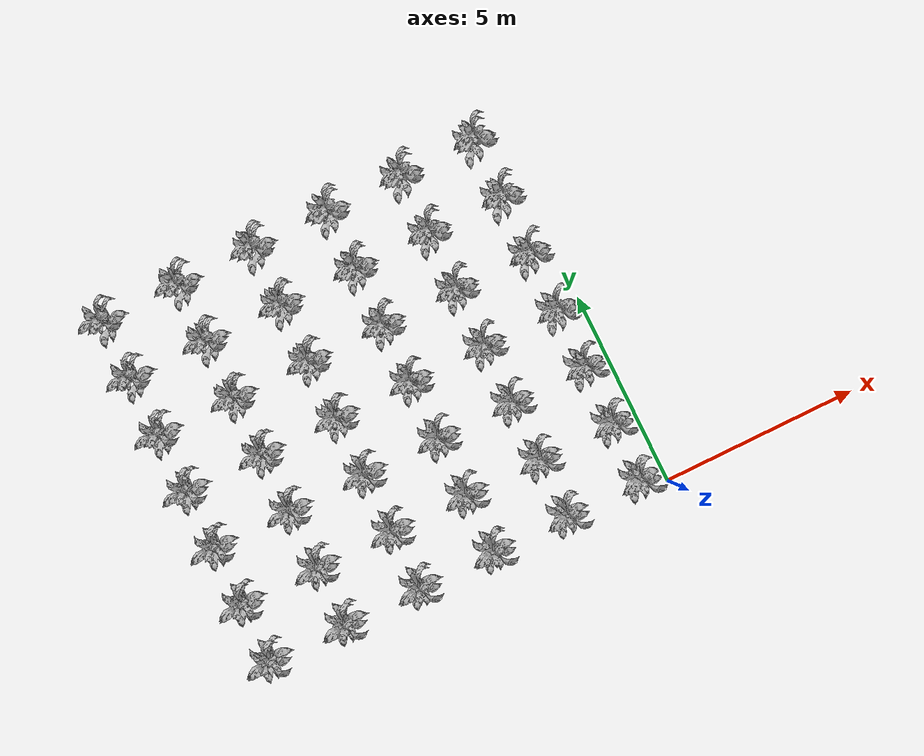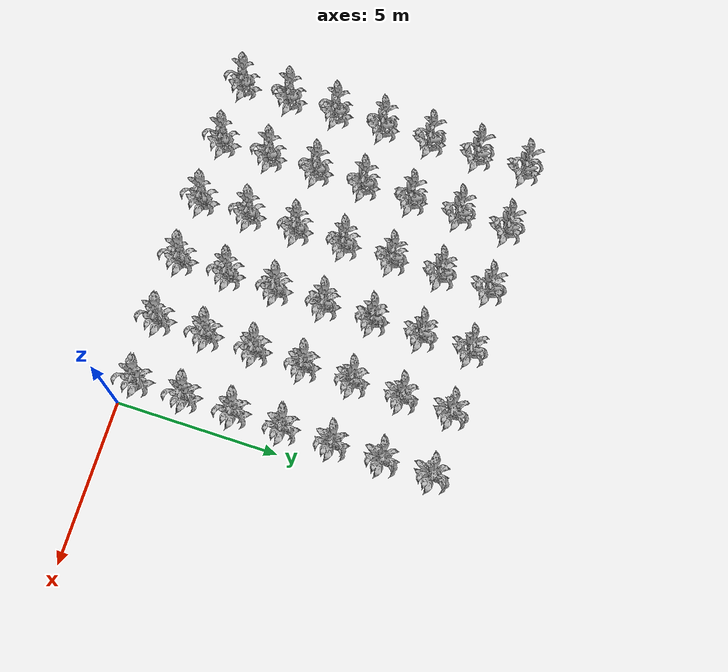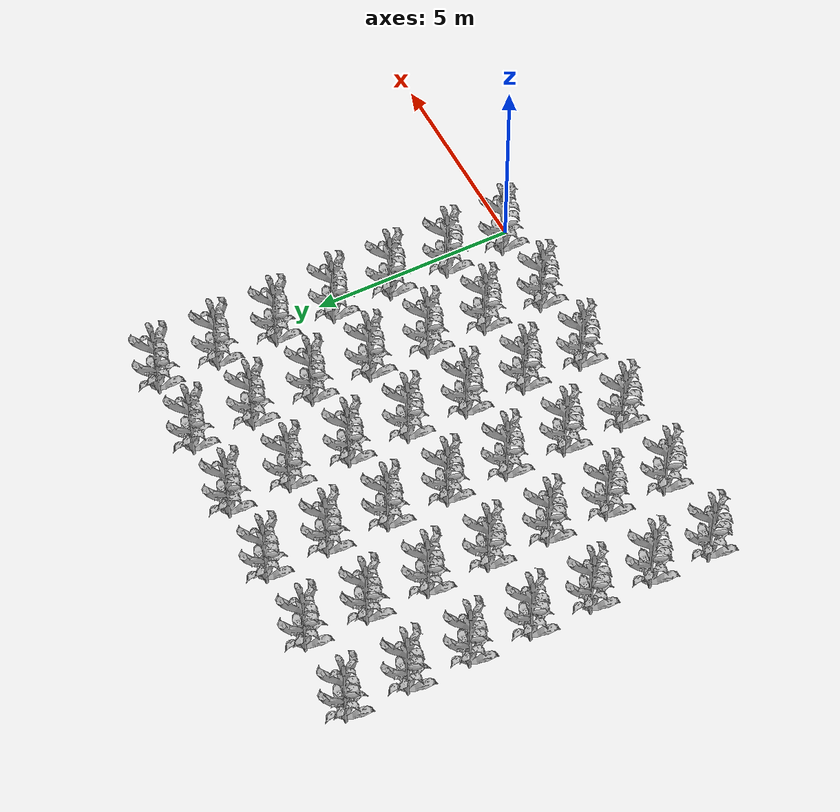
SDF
<sdf version="1.7">
 <world name="default">
  <model name="corn_-10.5_0.5">
   <static>1</static>
   <link name="link">
    <inertial>
     <mass>0.2</mass>
     <inertia>
      <ixx>0.166667</ixx>
      <ixy>0</ixy>
      <ixz>0</ixz>
      <iyy>0.166667</iyy>
      <iyz>0</iyz>
      <izz>0.166667</izz>
     </inertia>
    </inertial>
    <collision name="collision">
     <geometry><mesh><uri>model://corn_2/meshes/corn.dae</uri><scale>1 1 1</scale></mesh></geometry>
     <surface>
      <friction><ode><mu>0.0</mu><mu2>0.0</mu2></ode></friction>
      <contact><ode><kp>0.0</kp><kd>0.0</kd><max_vel>0.0</max_vel><min_depth>0.002</min_depth></ode></contact>
     </surface>
    </collision>
    <visual name="visual">
     <geometry><mesh><uri>model://corn_2/meshes/corn.dae</uri><scale>1 1 1</scale></mesh></geometry>
    </visual>
    <velocity_decay><linear>0</linear><angular>0</angular></velocity_decay>
   </link>
   <pose>-10.5 0.5 0.15 0 -0 0</pose>
  </model>
  <model name="corn_-10.5_2.0">
   <static>1</static>
   <link name="link">
    <inertial>
     <mass>0.2</mass>
     <inertia>
      <ixx>0.166667</ixx>
      <ixy>0</ixy>
      <ixz>0</ixz>
      <iyy>0.166667</iyy>
      <iyz>0</iyz>
      <izz>0.166667</izz>
     </inertia>
    </inertial>
    <collision name="collision">
     <geometry><mesh><uri>model://corn_2/meshes/corn.dae</uri><scale>1 1 1</scale></mesh></geometry>
     <surface>
      <friction><ode><mu>0.0</mu><mu2>0.0</mu2></ode></friction>
      <contact><ode><kp>0.0</kp><kd>0.0</kd><max_vel>0.0</max_vel><min_depth>0.002</min_depth></ode></contact>
     </surface>
    </collision>
    <visual name="visual">
     <geometry><mesh><uri>model://corn_2/meshes/corn.dae</uri><scale>1 1 1</scale></mesh></geometry>
    </visual>
    <velocity_decay><linear>0</linear><angular>0</angular></velocity_decay>
   </link>
   <pose>-10.5 2 0.15 0 -0 0</pose>
  </model>
  <model name="corn_-10.5_3.5">
   <static>1</static>
   <link name="link">
    <inertial>
     <mass>0.2</mass>
     <inertia>
      <ixx>0.166667</ixx>
      <ixy>0</ixy>
      <ixz>0</ixz>
      <iyy>0.166667</iyy>
      <iyz>0</iyz>
      <izz>0.166667</izz>
     </inertia>
    </inertial>
    <collision name="collision">
     <geometry><mesh><uri>model://corn_2/meshes/corn.dae</uri><scale>1 1 1</scale></mesh></geometry>
     <surface>
      <friction><ode><mu>0.0</mu><mu2>0.0</mu2></ode></friction>
      <contact><ode><kp>0.0</kp><kd>0.0</kd><max_vel>0.0</max_vel><min_depth>0.002</min_depth></ode></contact>
     </surface>
    </collision>
    <visual name="visual">
     <geometry><mesh><uri>model://corn_2/meshes/corn.dae</uri><scale>1 1 1</scale></mesh></geometry>
    </visual>
    <velocity_decay><linear>0</linear><angular>0</angular></velocity_decay>
   </link>
   <pose>-10.5 3.5 0.15 0 -0 0</pose>
  </model>
  <model name="corn_-10.5_5.0">
   <static>1</static>
   <link name="link">
    <inertial>
     <mass>0.2</mass>
     <inertia>
      <ixx>0.166667</ixx>
      <ixy>0</ixy>
      <ixz>0</ixz>
      <iyy>0.166667</iyy>
      <iyz>0</iyz>
      <izz>0.166667</izz>
     </inertia>
    </inertial>
    <collision name="collision">
     <geometry><mesh><uri>model://corn_2/meshes/corn.dae</uri><scale>1 1 1</scale></mesh></geometry>
     <surface>
      <friction><ode><mu>0.0</mu><mu2>0.0</mu2></ode></friction>
      <contact><ode><kp>0.0</kp><kd>0.0</kd><max_vel>0.0</max_vel><min_depth>0.002</min_depth></ode></contact>
     </surface>
    </collision>
    <visual name="visual">
     <geometry><mesh><uri>model://corn_2/meshes/corn.dae</uri><scale>1 1 1</scale></mesh></geometry>
    </visual>
    <velocity_decay><linear>0</linear><angular>0</angular></velocity_decay>
   </link>
   <pose>-10.5 5 0.15 0 -0 0</pose>
  </model>
  <model name="corn_-10.5_6.5">
   <static>1</static>
   <link name="link">
    <inertial>
     <mass>0.2</mass>
     <inertia>
      <ixx>0.166667</ixx>
      <ixy>0</ixy>
      <ixz>0</ixz>
      <iyy>0.166667</iyy>
      <iyz>0</iyz>
      <izz>0.166667</izz>
     </inertia>
    </inertial>
    <collision name="collision">
     <geometry><mesh><uri>model://corn_2/meshes/corn.dae</uri><scale>1 1 1</scale></mesh></geometry>
     <surface>
      <friction><ode><mu>0.0</mu><mu2>0.0</mu2></ode></friction>
      <contact><ode><kp>0.0</kp><kd>0.0</kd><max_vel>0.0</max_vel><min_depth>0.002</min_depth></ode></contact>
     </surface>
    </collision>
    <visual name="visual">
     <geometry><mesh><uri>model://corn_2/meshes/corn.dae</uri><scale>1 1 1</scale></mesh></geometry>
    </visual>
    <velocity_decay><linear>0</linear><angular>0</angular></velocity_decay>
   </link>
   <pose>-10.5 6.5 0.15 0 -0 0</pose>
  </model>
  <model name="corn_-10.5_8.0">
   <static>1</static>
   <link name="link">
    <inertial>
     <mass>0.2</mass>
     <inertia>
      <ixx>0.166667</ixx>
      <ixy>0</ixy>
      <ixz>0</ixz>
      <iyy>0.166667</iyy>
      <iyz>0</iyz>
      <izz>0.166667</izz>
     </inertia>
    </inertial>
    <collision name="collision">
     <geometry><mesh><uri>model://corn_2/meshes/corn.dae</uri><scale>1 1 1</scale></mesh></geometry>
     <surface>
      <friction><ode><mu>0.0</mu><mu2>0.0</mu2></ode></friction>
      <contact><ode><kp>0.0</kp><kd>0.0</kd><max_vel>0.0</max_vel><min_depth>0.002</min_depth></ode></contact>
     </surface>
    </collision>
    <visual name="visual">
     <geometry><mesh><uri>model://corn_2/meshes/corn.dae</uri><scale>1 1 1</scale></mesh></geometry>
    </visual>
    <velocity_decay><linear>0</linear><angular>0</angular></velocity_decay>
   </link>
   <pose>-10.5 8 0.15 0 -0 0</pose>
  </model>
  <model name="corn_-10.5_9.5">
   <static>1</static>
   <link name="link">
    <inertial>
     <mass>0.2</mass>
     <inertia>
      <ixx>0.166667</ixx>
      <ixy>0</ixy>
      <ixz>0</ixz>
      <iyy>0.166667</iyy>
      <iyz>0</iyz>
      <izz>0.166667</izz>
     </inertia>
    </inertial>
    <collision name="collision">
     <geometry><mesh><uri>model://corn_2/meshes/corn.dae</uri><scale>1 1 1</scale></mesh></geometry>
     <surface>
      <friction><ode><mu>0.0</mu><mu2>0.0</mu2></ode></friction>
      <contact><ode><kp>0.0</kp><kd>0.0</kd><max_vel>0.0</max_vel><min_depth>0.002</min_depth></ode></contact>
     </surface>
    </collision>
    <visual name="visual">
     <geometry><mesh><uri>model://corn_2/meshes/corn.dae</uri><scale>1 1 1</scale></mesh></geometry>
    </visual>
    <velocity_decay><linear>0</linear><angular>0</angular></velocity_decay>
   </link>
   <pose>-10.5 9.5 0.15 0 -0 0</pose>
  </model>
  <model name="corn_-8.508_0.5">
   <static>1</static>
   <link name="link">
    <inertial>
     <mass>0.2</mass>
     <inertia>
      <ixx>0.166667</ixx>
      <ixy>0</ixy>
      <ixz>0</ixz>
      <iyy>0.166667</iyy>
      <iyz>0</iyz>
      <izz>0.166667</izz>
     </inertia>
    </inertial>
    <collision name="collision">
     <geometry><mesh><uri>model://corn_2/meshes/corn.dae</uri><scale>1 1 1</scale></mesh></geometry>
     <surface>
      <friction><ode><mu>0.0</mu><mu2>0.0</mu2></ode></friction>
      <contact><ode><kp>0.0</kp><kd>0.0</kd><max_vel>0.0</max_vel><min_depth>0.002</min_depth></ode></contact>
     </surface>
    </collision>
    <visual name="visual">
     <geometry><mesh><uri>model://corn_2/meshes/corn.dae</uri><scale>1 1 1</scale></mesh></geometry>
    </visual>
    <velocity_decay><linear>0</linear><angular>0</angular></velocity_decay>
   </link>
   <pose>-8.508 0.5 0.15 0 -0 0</pose>
  </model>
  <model name="corn_-8.508_2.0">
   <static>1</static>
   <link name="link">
    <inertial>
     <mass>0.2</mass>
     <inertia>
      <ixx>0.166667</ixx>
      <ixy>0</ixy>
      <ixz>0</ixz>
      <iyy>0.166667</iyy>
      <iyz>0</iyz>
      <izz>0.166667</izz>
     </inertia>
    </inertial>
    <collision name="collision">
     <geometry><mesh><uri>model://corn_2/meshes/corn.dae</uri><scale>1 1 1</scale></mesh></geometry>
     <surface>
      <friction><ode><mu>0.0</mu><mu2>0.0</mu2></ode></friction>
      <contact><ode><kp>0.0</kp><kd>0.0</kd><max_vel>0.0</max_vel><min_depth>0.002</min_depth></ode></contact>
     </surface>
    </collision>
    <visual name="visual">
     <geometry><mesh><uri>model://corn_2/meshes/corn.dae</uri><scale>1 1 1</scale></mesh></geometry>
    </visual>
    <velocity_decay><linear>0</linear><angular>0</angular></velocity_decay>
   </link>
   <pose>-8.508 2 0.15 0 -0 0</pose>
  </model>
  <model name="corn_-8.508_3.5">
   <static>1</static>
   <link name="link">
    <inertial>
     <mass>0.2</mass>
     <inertia>
      <ixx>0.166667</ixx>
      <ixy>0</ixy>
      <ixz>0</ixz>
      <iyy>0.166667</iyy>
      <iyz>0</iyz>
      <izz>0.166667</izz>
     </inertia>
    </inertial>
    <collision name="collision">
     <geometry><mesh><uri>model://corn_2/meshes/corn.dae</uri><scale>1 1 1</scale></mesh></geometry>
     <surface>
      <friction><ode><mu>0.0</mu><mu2>0.0</mu2></ode></friction>
      <contact><ode><kp>0.0</kp><kd>0.0</kd><max_vel>0.0</max_vel><min_depth>0.002</min_depth></ode></contact>
     </surface>
    </collision>
    <visual name="visual">
     <geometry><mesh><uri>model://corn_2/meshes/corn.dae</uri><scale>1 1 1</scale></mesh></geometry>
    </visual>
    <velocity_decay><linear>0</linear><angular>0</angular></velocity_decay>
   </link>
   <pose>-8.508 3.5 0.15 0 -0 0</pose>
  </model>
  <model name="corn_-8.508_5.0">
   <static>1</static>
   <link name="link">
    <inertial>
     <mass>0.2</mass>
     <inertia>
      <ixx>0.166667</ixx>
      <ixy>0</ixy>
      <ixz>0</ixz>
      <iyy>0.166667</iyy>
      <iyz>0</iyz>
      <izz>0.166667</izz>
     </inertia>
    </inertial>
    <collision name="collision">
     <geometry><mesh><uri>model://corn_2/meshes/corn.dae</uri><scale>1 1 1</scale></mesh></geometry>
     <surface>
      <friction><ode><mu>0.0</mu><mu2>0.0</mu2></ode></friction>
      <contact><ode><kp>0.0</kp><kd>0.0</kd><max_vel>0.0</max_vel><min_depth>0.002</min_depth></ode></contact>
     </surface>
    </collision>
    <visual name="visual">
     <geometry><mesh><uri>model://corn_2/meshes/corn.dae</uri><scale>1 1 1</scale></mesh></geometry>
    </visual>
    <velocity_decay><linear>0</linear><angular>0</angular></velocity_decay>
   </link>
   <pose>-8.508 5 0.15 0 -0 0</pose>
  </model>
  <model name="corn_-8.508_6.5">
   <static>1</static>
   <link name="link">
    <inertial>
     <mass>0.2</mass>
     <inertia>
      <ixx>0.166667</ixx>
      <ixy>0</ixy>
      <ixz>0</ixz>
      <iyy>0.166667</iyy>
      <iyz>0</iyz>
      <izz>0.166667</izz>
     </inertia>
    </inertial>
    <collision name="collision">
     <geometry><mesh><uri>model://corn_2/meshes/corn.dae</uri><scale>1 1 1</scale></mesh></geometry>
     <surface>
      <friction><ode><mu>0.0</mu><mu2>0.0</mu2></ode></friction>
      <contact><ode><kp>0.0</kp><kd>0.0</kd><max_vel>0.0</max_vel><min_depth>0.002</min_depth></ode></contact>
     </surface>
    </collision>
    <visual name="visual">
     <geometry><mesh><uri>model://corn_2/meshes/corn.dae</uri><scale>1 1 1</scale></mesh></geometry>
    </visual>
    <velocity_decay><linear>0</linear><angular>0</angular></velocity_decay>
   </link>
   <pose>-8.508 6.5 0.15 0 -0 0</pose>
  </model>
  <model name="corn_-8.508_8.0">
   <static>1</static>
   <link name="link">
    <inertial>
     <mass>0.2</mass>
     <inertia>
      <ixx>0.166667</ixx>
      <ixy>0</ixy>
      <ixz>0</ixz>
      <iyy>0.166667</iyy>
      <iyz>0</iyz>
      <izz>0.166667</izz>
     </inertia>
    </inertial>
    <collision name="collision">
     <geometry><mesh><uri>model://corn_2/meshes/corn.dae</uri><scale>1 1 1</scale></mesh></geometry>
     <surface>
      <friction><ode><mu>0.0</mu><mu2>0.0</mu2></ode></friction>
      <contact><ode><kp>0.0</kp><kd>0.0</kd><max_vel>0.0</max_vel><min_depth>0.002</min_depth></ode></contact>
     </surface>
    </collision>
    <visual name="visual">
     <geometry><mesh><uri>model://corn_2/meshes/corn.dae</uri><scale>1 1 1</scale></mesh></geometry>
    </visual>
    <velocity_decay><linear>0</linear><angular>0</angular></velocity_decay>
   </link>
   <pose>-8.508 8 0.15 0 -0 0</pose>
  </model>
  <model name="corn_-8.508_9.5">
   <static>1</static>
   <link name="link">
    <inertial>
     <mass>0.2</mass>
     <inertia>
      <ixx>0.166667</ixx>
      <ixy>0</ixy>
      <ixz>0</ixz>
      <iyy>0.166667</iyy>
      <iyz>0</iyz>
      <izz>0.166667</izz>
     </inertia>
    </inertial>
    <collision name="collision">
     <geometry><mesh><uri>model://corn_2/meshes/corn.dae</uri><scale>1 1 1</scale></mesh></geometry>
     <surface>
      <friction><ode><mu>0.0</mu><mu2>0.0</mu2></ode></friction>
      <contact><ode><kp>0.0</kp><kd>0.0</kd><max_vel>0.0</max_vel><min_depth>0.002</min_depth></ode></contact>
     </surface>
    </collision>
    <visual name="visual">
     <geometry><mesh><uri>model://corn_2/meshes/corn.dae</uri><scale>1 1 1</scale></mesh></geometry>
    </visual>
    <velocity_decay><linear>0</linear><angular>0</angular></velocity_decay>
   </link>
   <pose>-8.508 9.5 0.15 0 -0 0</pose>
  </model>
  <model name="corn_-6.531936_0.5">
   <static>1</static>
   <link name="link">
    <inertial>
     <mass>0.2</mass>
     <inertia>
      <ixx>0.166667</ixx>
      <ixy>0</ixy>
      <ixz>0</ixz>
      <iyy>0.166667</iyy>
      <iyz>0</iyz>
      <izz>0.166667</izz>
     </inertia>
    </inertial>
    <collision name="collision">
     <geometry><mesh><uri>model://corn_2/meshes/corn.dae</uri><scale>1 1 1</scale></mesh></geometry>
     <surface>
      <friction><ode><mu>0.0</mu><mu2>0.0</mu2></ode></friction>
      <contact><ode><kp>0.0</kp><kd>0.0</kd><max_vel>0.0</max_vel><min_depth>0.002</min_depth></ode></contact>
     </surface>
    </collision>
    <visual name="visual">
     <geometry><mesh><uri>model://corn_2/meshes/corn.dae</uri><scale>1 1 1</scale></mesh></geometry>
    </visual>
    <velocity_decay><linear>0</linear><angular>0</angular></velocity_decay>
   </link>
   <pose>-6.53194 0.5 0.15 0 -0 0</pose>
  </model>
  <model name="corn_-6.531936_2.0">
   <static>1</static>
   <link name="link">
    <inertial>
     <mass>0.2</mass>
     <inertia>
      <ixx>0.166667</ixx>
      <ixy>0</ixy>
      <ixz>0</ixz>
      <iyy>0.166667</iyy>
      <iyz>0</iyz>
      <izz>0.166667</izz>
     </inertia>
    </inertial>
    <collision name="collision">
     <geometry><mesh><uri>model://corn_2/meshes/corn.dae</uri><scale>1 1 1</scale></mesh></geometry>
     <surface>
      <friction><ode><mu>0.0</mu><mu2>0.0</mu2></ode></friction>
      <contact><ode><kp>0.0</kp><kd>0.0</kd><max_vel>0.0</max_vel><min_depth>0.002</min_depth></ode></contact>
     </surface>
    </collision>
    <visual name="visual">
     <geometry><mesh><uri>model://corn_2/meshes/corn.dae</uri><scale>1 1 1</scale></mesh></geometry>
    </visual>
    <velocity_decay><linear>0</linear><angular>0</angular></velocity_decay>
   </link>
   <pose>-6.53194 2 0.15 0 -0 0</pose>
  </model>
  <model name="corn_-6.531936_3.5">
   <static>1</static>
   <link name="link">
    <inertial>
     <mass>0.2</mass>
     <inertia>
      <ixx>0.166667</ixx>
      <ixy>0</ixy>
      <ixz>0</ixz>
      <iyy>0.166667</iyy>
      <iyz>0</iyz>
      <izz>0.166667</izz>
     </inertia>
    </inertial>
    <collision name="collision">
     <geometry><mesh><uri>model://corn_2/meshes/corn.dae</uri><scale>1 1 1</scale></mesh></geometry>
     <surface>
      <friction><ode><mu>0.0</mu><mu2>0.0</mu2></ode></friction>
      <contact><ode><kp>0.0</kp><kd>0.0</kd><max_vel>0.0</max_vel><min_depth>0.002</min_depth></ode></contact>
     </surface>
    </collision>
    <visual name="visual">
     <geometry><mesh><uri>model://corn_2/meshes/corn.dae</uri><scale>1 1 1</scale></mesh></geometry>
    </visual>
    <velocity_decay><linear>0</linear><angular>0</angular></velocity_decay>
   </link>
   <pose>-6.53194 3.5 0.15 0 -0 0</pose>
  </model>
  <model name="corn_-6.531936_5.0">
   <static>1</static>
   <link name="link">
    <inertial>
     <mass>0.2</mass>
     <inertia>
      <ixx>0.166667</ixx>
      <ixy>0</ixy>
      <ixz>0</ixz>
      <iyy>0.166667</iyy>
      <iyz>0</iyz>
      <izz>0.166667</izz>
     </inertia>
    </inertial>
    <collision name="collision">
     <geometry><mesh><uri>model://corn_2/meshes/corn.dae</uri><scale>1 1 1</scale></mesh></geometry>
     <surface>
      <friction><ode><mu>0.0</mu><mu2>0.0</mu2></ode></friction>
      <contact><ode><kp>0.0</kp><kd>0.0</kd><max_vel>0.0</max_vel><min_depth>0.002</min_depth></ode></contact>
     </surface>
    </collision>
    <visual name="visual">
     <geometry><mesh><uri>model://corn_2/meshes/corn.dae</uri><scale>1 1 1</scale></mesh></geometry>
    </visual>
    <velocity_decay><linear>0</linear><angular>0</angular></velocity_decay>
   </link>
   <pose>-6.53194 5 0.15 0 -0 0</pose>
  </model>
  <model name="corn_-6.531936_6.5">
   <static>1</static>
   <link name="link">
    <inertial>
     <mass>0.2</mass>
     <inertia>
      <ixx>0.166667</ixx>
      <ixy>0</ixy>
      <ixz>0</ixz>
      <iyy>0.166667</iyy>
      <iyz>0</iyz>
      <izz>0.166667</izz>
     </inertia>
    </inertial>
    <collision name="collision">
     <geometry><mesh><uri>model://corn_2/meshes/corn.dae</uri><scale>1 1 1</scale></mesh></geometry>
     <surface>
      <friction><ode><mu>0.0</mu><mu2>0.0</mu2></ode></friction>
      <contact><ode><kp>0.0</kp><kd>0.0</kd><max_vel>0.0</max_vel><min_depth>0.002</min_depth></ode></contact>
     </surface>
    </collision>
    <visual name="visual">
     <geometry><mesh><uri>model://corn_2/meshes/corn.dae</uri><scale>1 1 1</scale></mesh></geometry>
    </visual>
    <velocity_decay><linear>0</linear><angular>0</angular></velocity_decay>
   </link>
   <pose>-6.53194 6.5 0.15 0 -0 0</pose>
  </model>
  <model name="corn_-6.531936_8.0">
   <static>1</static>
   <link name="link">
    <inertial>
     <mass>0.2</mass>
     <inertia>
      <ixx>0.166667</ixx>
      <ixy>0</ixy>
      <ixz>0</ixz>
      <iyy>0.166667</iyy>
      <iyz>0</iyz>
      <izz>0.166667</izz>
     </inertia>
    </inertial>
    <collision name="collision">
     <geometry><mesh><uri>model://corn_2/meshes/corn.dae</uri><scale>1 1 1</scale></mesh></geometry>
     <surface>
      <friction><ode><mu>0.0</mu><mu2>0.0</mu2></ode></friction>
      <contact><ode><kp>0.0</kp><kd>0.0</kd><max_vel>0.0</max_vel><min_depth>0.002</min_depth></ode></contact>
     </surface>
    </collision>
    <visual name="visual">
     <geometry><mesh><uri>model://corn_2/meshes/corn.dae</uri><scale>1 1 1</scale></mesh></geometry>
    </visual>
    <velocity_decay><linear>0</linear><angular>0</angular></velocity_decay>
   </link>
   <pose>-6.53194 8 0.15 0 -0 0</pose>
  </model>
  <model name="corn_-6.531936_9.5">
   <static>1</static>
   <link name="link">
    <inertial>
     <mass>0.2</mass>
     <inertia>
      <ixx>0.166667</ixx>
      <ixy>0</ixy>
      <ixz>0</ixz>
      <iyy>0.166667</iyy>
      <iyz>0</iyz>
      <izz>0.166667</izz>
     </inertia>
    </inertial>
    <collision name="collision">
     <geometry><mesh><uri>model://corn_2/meshes/corn.dae</uri><scale>1 1 1</scale></mesh></geometry>
     <surface>
      <friction><ode><mu>0.0</mu><mu2>0.0</mu2></ode></friction>
      <contact><ode><kp>0.0</kp><kd>0.0</kd><max_vel>0.0</max_vel><min_depth>0.002</min_depth></ode></contact>
     </surface>
    </collision>
    <visual name="visual">
     <geometry><mesh><uri>model://corn_2/meshes/corn.dae</uri><scale>1 1 1</scale></mesh></geometry>
    </visual>
    <velocity_decay><linear>0</linear><angular>0</angular></velocity_decay>
   </link>
   <pose>-6.53194 9.5 0.15 0 -0 0</pose>
  </model>
  <model name="corn_-4.5717123840000005_0.5">
   <static>1</static>
   <link name="link">
    <inertial>
     <mass>0.2</mass>
     <inertia>
      <ixx>0.166667</ixx>
      <ixy>0</ixy>
      <ixz>0</ixz>
      <iyy>0.166667</iyy>
      <iyz>0</iyz>
      <izz>0.166667</izz>
     </inertia>
    </inertial>
    <collision name="collision">
     <geometry><mesh><uri>model://corn_2/meshes/corn.dae</uri><scale>1 1 1</scale></mesh></geometry>
     <surface>
      <friction><ode><mu>0.0</mu><mu2>0.0</mu2></ode></friction>
      <contact><ode><kp>0.0</kp><kd>0.0</kd><max_vel>0.0</max_vel><min_depth>0.002</min_depth></ode></contact>
     </surface>
    </collision>
    <visual name="visual">
     <geometry><mesh><uri>model://corn_2/meshes/corn.dae</uri><scale>1 1 1</scale></mesh></geometry>
    </visual>
    <velocity_decay><linear>0</linear><angular>0</angular></velocity_decay>
   </link>
   <pose>-4.57171 0.5 0.15 0 -0 0</pose>
  </model>
  <model name="corn_-4.5717123840000005_2.0">
   <static>1</static>
   <link name="link">
    <inertial>
     <mass>0.2</mass>
     <inertia>
      <ixx>0.166667</ixx>
      <ixy>0</ixy>
      <ixz>0</ixz>
      <iyy>0.166667</iyy>
      <iyz>0</iyz>
      <izz>0.166667</izz>
     </inertia>
    </inertial>
    <collision name="collision">
     <geometry><mesh><uri>model://corn_2/meshes/corn.dae</uri><scale>1 1 1</scale></mesh></geometry>
     <surface>
      <friction><ode><mu>0.0</mu><mu2>0.0</mu2></ode></friction>
      <contact><ode><kp>0.0</kp><kd>0.0</kd><max_vel>0.0</max_vel><min_depth>0.002</min_depth></ode></contact>
     </surface>
    </collision>
    <visual name="visual">
     <geometry><mesh><uri>model://corn_2/meshes/corn.dae</uri><scale>1 1 1</scale></mesh></geometry>
    </visual>
    <velocity_decay><linear>0</linear><angular>0</angular></velocity_decay>
   </link>
   <pose>-4.57171 2 0.15 0 -0 0</pose>
  </model>
  <model name="corn_-4.5717123840000005_3.5">
   <static>1</static>
   <link name="link">
    <inertial>
     <mass>0.2</mass>
     <inertia>
      <ixx>0.166667</ixx>
      <ixy>0</ixy>
      <ixz>0</ixz>
      <iyy>0.166667</iyy>
      <iyz>0</iyz>
      <izz>0.166667</izz>
     </inertia>
    </inertial>
    <collision name="collision">
     <geometry><mesh><uri>model://corn_2/meshes/corn.dae</uri><scale>1 1 1</scale></mesh></geometry>
     <surface>
      <friction><ode><mu>0.0</mu><mu2>0.0</mu2></ode></friction>
      <contact><ode><kp>0.0</kp><kd>0.0</kd><max_vel>0.0</max_vel><min_depth>0.002</min_depth></ode></contact>
     </surface>
    </collision>
    <visual name="visual">
     <geometry><mesh><uri>model://corn_2/meshes/corn.dae</uri><scale>1 1 1</scale></mesh></geometry>
    </visual>
    <velocity_decay><linear>0</linear><angular>0</angular></velocity_decay>
   </link>
   <pose>-4.57171 3.5 0.15 0 -0 0</pose>
  </model>
  <model name="corn_-4.5717123840000005_5.0">
   <static>1</static>
   <link name="link">
    <inertial>
     <mass>0.2</mass>
     <inertia>
      <ixx>0.166667</ixx>
      <ixy>0</ixy>
      <ixz>0</ixz>
      <iyy>0.166667</iyy>
      <iyz>0</iyz>
      <izz>0.166667</izz>
     </inertia>
    </inertial>
    <collision name="collision">
     <geometry><mesh><uri>model://corn_2/meshes/corn.dae</uri><scale>1 1 1</scale></mesh></geometry>
     <surface>
      <friction><ode><mu>0.0</mu><mu2>0.0</mu2></ode></friction>
      <contact><ode><kp>0.0</kp><kd>0.0</kd><max_vel>0.0</max_vel><min_depth>0.002</min_depth></ode></contact>
     </surface>
    </collision>
    <visual name="visual">
     <geometry><mesh><uri>model://corn_2/meshes/corn.dae</uri><scale>1 1 1</scale></mesh></geometry>
    </visual>
    <velocity_decay><linear>0</linear><angular>0</angular></velocity_decay>
   </link>
   <pose>-4.57171 5 0.15 0 -0 0</pose>
  </model>
  <model name="corn_-4.5717123840000005_6.5">
   <static>1</static>
   <link name="link">
    <inertial>
     <mass>0.2</mass>
     <inertia>
      <ixx>0.166667</ixx>
      <ixy>0</ixy>
      <ixz>0</ixz>
      <iyy>0.166667</iyy>
      <iyz>0</iyz>
      <izz>0.166667</izz>
     </inertia>
    </inertial>
    <collision name="collision">
     <geometry><mesh><uri>model://corn_2/meshes/corn.dae</uri><scale>1 1 1</scale></mesh></geometry>
     <surface>
      <friction><ode><mu>0.0</mu><mu2>0.0</mu2></ode></friction>
      <contact><ode><kp>0.0</kp><kd>0.0</kd><max_vel>0.0</max_vel><min_depth>0.002</min_depth></ode></contact>
     </surface>
    </collision>
    <visual name="visual">
     <geometry><mesh><uri>model://corn_2/meshes/corn.dae</uri><scale>1 1 1</scale></mesh></geometry>
    </visual>
    <velocity_decay><linear>0</linear><angular>0</angular></velocity_decay>
   </link>
   <pose>-4.57171 6.5 0.15 0 -0 0</pose>
  </model>
  <model name="corn_-4.5717123840000005_8.0">
   <static>1</static>
   <link name="link">
    <inertial>
     <mass>0.2</mass>
     <inertia>
      <ixx>0.166667</ixx>
      <ixy>0</ixy>
      <ixz>0</ixz>
      <iyy>0.166667</iyy>
      <iyz>0</iyz>
      <izz>0.166667</izz>
     </inertia>
    </inertial>
    <collision name="collision">
     <geometry><mesh><uri>model://corn_2/meshes/corn.dae</uri><scale>1 1 1</scale></mesh></geometry>
     <surface>
      <friction><ode><mu>0.0</mu><mu2>0.0</mu2></ode></friction>
      <contact><ode><kp>0.0</kp><kd>0.0</kd><max_vel>0.0</max_vel><min_depth>0.002</min_depth></ode></contact>
     </surface>
    </collision>
    <visual name="visual">
     <geometry><mesh><uri>model://corn_2/meshes/corn.dae</uri><scale>1 1 1</scale></mesh></geometry>
    </visual>
    <velocity_decay><linear>0</linear><angular>0</angular></velocity_decay>
   </link>
   <pose>-4.57171 8 0.15 0 -0 0</pose>
  </model>
  <model name="corn_-4.5717123840000005_9.5">
   <static>1</static>
   <link name="link">
    <inertial>
     <mass>0.2</mass>
     <inertia>
      <ixx>0.166667</ixx>
      <ixy>0</ixy>
      <ixz>0</ixz>
      <iyy>0.166667</iyy>
      <iyz>0</iyz>
      <izz>0.166667</izz>
     </inertia>
    </inertial>
    <collision name="collision">
     <geometry><mesh><uri>model://corn_2/meshes/corn.dae</uri><scale>1 1 1</scale></mesh></geometry>
     <surface>
      <friction><ode><mu>0.0</mu><mu2>0.0</mu2></ode></friction>
      <contact><ode><kp>0.0</kp><kd>0.0</kd><max_vel>0.0</max_vel><min_depth>0.002</min_depth></ode></contact>
     </surface>
    </collision>
    <visual name="visual">
     <geometry><mesh><uri>model://corn_2/meshes/corn.dae</uri><scale>1 1 1</scale></mesh></geometry>
    </visual>
    <velocity_decay><linear>0</linear><angular>0</angular></velocity_decay>
   </link>
   <pose>-4.57171 9.5 0.15 0 -0 0</pose>
  </model>
  <model name="corn_-2.627234045952_0.5">
   <static>1</static>
   <link name="link">
    <inertial>
     <mass>0.2</mass>
     <inertia>
      <ixx>0.166667</ixx>
      <ixy>0</ixy>
      <ixz>0</ixz>
      <iyy>0.166667</iyy>
      <iyz>0</iyz>
      <izz>0.166667</izz>
     </inertia>
    </inertial>
    <collision name="collision">
     <geometry><mesh><uri>model://corn_2/meshes/corn.dae</uri><scale>1 1 1</scale></mesh></geometry>
     <surface>
      <friction><ode><mu>0.0</mu><mu2>0.0</mu2></ode></friction>
      <contact><ode><kp>0.0</kp><kd>0.0</kd><max_vel>0.0</max_vel><min_depth>0.002</min_depth></ode></contact>
     </surface>
    </collision>
    <visual name="visual">
     <geometry><mesh><uri>model://corn_2/meshes/corn.dae</uri><scale>1 1 1</scale></mesh></geometry>
    </visual>
    <velocity_decay><linear>0</linear><angular>0</angular></velocity_decay>
   </link>
   <pose>-2.62723 0.5 0.15 0 -0 0</pose>
  </model>
  <model name="corn_-2.627234045952_2.0">
   <static>1</static>
   <link name="link">
    <inertial>
     <mass>0.2</mass>
     <inertia>
      <ixx>0.166667</ixx>
      <ixy>0</ixy>
      <ixz>0</ixz>
      <iyy>0.166667</iyy>
      <iyz>0</iyz>
      <izz>0.166667</izz>
     </inertia>
    </inertial>
    <collision name="collision">
     <geometry><mesh><uri>model://corn_2/meshes/corn.dae</uri><scale>1 1 1</scale></mesh></geometry>
     <surface>
      <friction><ode><mu>0.0</mu><mu2>0.0</mu2></ode></friction>
      <contact><ode><kp>0.0</kp><kd>0.0</kd><max_vel>0.0</max_vel><min_depth>0.002</min_depth></ode></contact>
     </surface>
    </collision>
    <visual name="visual">
     <geometry><mesh><uri>model://corn_2/meshes/corn.dae</uri><scale>1 1 1</scale></mesh></geometry>
    </visual>
    <velocity_decay><linear>0</linear><angular>0</angular></velocity_decay>
   </link>
   <pose>-2.62723 2 0.15 0 -0 0</pose>
  </model>
  <model name="corn_-2.627234045952_3.5">
   <static>1</static>
   <link name="link">
    <inertial>
     <mass>0.2</mass>
     <inertia>
      <ixx>0.166667</ixx>
      <ixy>0</ixy>
      <ixz>0</ixz>
      <iyy>0.166667</iyy>
      <iyz>0</iyz>
      <izz>0.166667</izz>
     </inertia>
    </inertial>
    <collision name="collision">
     <geometry><mesh><uri>model://corn_2/meshes/corn.dae</uri><scale>1 1 1</scale></mesh></geometry>
     <surface>
      <friction><ode><mu>0.0</mu><mu2>0.0</mu2></ode></friction>
      <contact><ode><kp>0.0</kp><kd>0.0</kd><max_vel>0.0</max_vel><min_depth>0.002</min_depth></ode></contact>
     </surface>
    </collision>
    <visual name="visual">
     <geometry><mesh><uri>model://corn_2/meshes/corn.dae</uri><scale>1 1 1</scale></mesh></geometry>
    </visual>
    <velocity_decay><linear>0</linear><angular>0</angular></velocity_decay>
   </link>
   <pose>-2.62723 3.5 0.15 0 -0 0</pose>
  </model>
  <model name="corn_-2.627234045952_5.0">
   <static>1</static>
   <link name="link">
    <inertial>
     <mass>0.2</mass>
     <inertia>
      <ixx>0.166667</ixx>
      <ixy>0</ixy>
      <ixz>0</ixz>
      <iyy>0.166667</iyy>
      <iyz>0</iyz>
      <izz>0.166667</izz>
     </inertia>
    </inertial>
    <collision name="collision">
     <geometry><mesh><uri>model://corn_2/meshes/corn.dae</uri><scale>1 1 1</scale></mesh></geometry>
     <surface>
      <friction><ode><mu>0.0</mu><mu2>0.0</mu2></ode></friction>
      <contact><ode><kp>0.0</kp><kd>0.0</kd><max_vel>0.0</max_vel><min_depth>0.002</min_depth></ode></contact>
     </surface>
    </collision>
    <visual name="visual">
     <geometry><mesh><uri>model://corn_2/meshes/corn.dae</uri><scale>1 1 1</scale></mesh></geometry>
    </visual>
    <velocity_decay><linear>0</linear><angular>0</angular></velocity_decay>
   </link>
   <pose>-2.62723 5 0.15 0 -0 0</pose>
  </model>
  <model name="corn_-2.627234045952_6.5">
   <static>1</static>
   <link name="link">
    <inertial>
     <mass>0.2</mass>
     <inertia>
      <ixx>0.166667</ixx>
      <ixy>0</ixy>
      <ixz>0</ixz>
      <iyy>0.166667</iyy>
      <iyz>0</iyz>
      <izz>0.166667</izz>
     </inertia>
    </inertial>
    <collision name="collision">
     <geometry><mesh><uri>model://corn_2/meshes/corn.dae</uri><scale>1 1 1</scale></mesh></geometry>
     <surface>
      <friction><ode><mu>0.0</mu><mu2>0.0</mu2></ode></friction>
      <contact><ode><kp>0.0</kp><kd>0.0</kd><max_vel>0.0</max_vel><min_depth>0.002</min_depth></ode></contact>
     </surface>
    </collision>
    <visual name="visual">
     <geometry><mesh><uri>model://corn_2/meshes/corn.dae</uri><scale>1 1 1</scale></mesh></geometry>
    </visual>
    <velocity_decay><linear>0</linear><angular>0</angular></velocity_decay>
   </link>
   <pose>-2.62723 6.5 0.15 0 -0 0</pose>
  </model>
  <model name="corn_-2.627234045952_8.0">
   <static>1</static>
   <link name="link">
    <inertial>
     <mass>0.2</mass>
     <inertia>
      <ixx>0.166667</ixx>
      <ixy>0</ixy>
      <ixz>0</ixz>
      <iyy>0.166667</iyy>
      <iyz>0</iyz>
      <izz>0.166667</izz>
     </inertia>
    </inertial>
    <collision name="collision">
     <geometry><mesh><uri>model://corn_2/meshes/corn.dae</uri><scale>1 1 1</scale></mesh></geometry>
     <surface>
      <friction><ode><mu>0.0</mu><mu2>0.0</mu2></ode></friction>
      <contact><ode><kp>0.0</kp><kd>0.0</kd><max_vel>0.0</max_vel><min_depth>0.002</min_depth></ode></contact>
     </surface>
    </collision>
    <visual name="visual">
     <geometry><mesh><uri>model://corn_2/meshes/corn.dae</uri><scale>1 1 1</scale></mesh></geometry>
    </visual>
    <velocity_decay><linear>0</linear><angular>0</angular></velocity_decay>
   </link>
   <pose>-2.62723 8 0.15 0 -0 0</pose>
  </model>
  <model name="corn_-2.627234045952_9.5">
   <static>1</static>
   <link name="link">
    <inertial>
     <mass>0.2</mass>
     <inertia>
      <ixx>0.166667</ixx>
      <ixy>0</ixy>
      <ixz>0</ixz>
      <iyy>0.166667</iyy>
      <iyz>0</iyz>
      <izz>0.166667</izz>
     </inertia>
    </inertial>
    <collision name="collision">
     <geometry><mesh><uri>model://corn_2/meshes/corn.dae</uri><scale>1 1 1</scale></mesh></geometry>
     <surface>
      <friction><ode><mu>0.0</mu><mu2>0.0</mu2></ode></friction>
      <contact><ode><kp>0.0</kp><kd>0.0</kd><max_vel>0.0</max_vel><min_depth>0.002</min_depth></ode></contact>
     </surface>
    </collision>
    <visual name="visual">
     <geometry><mesh><uri>model://corn_2/meshes/corn.dae</uri><scale>1 1 1</scale></mesh></geometry>
    </visual>
    <velocity_decay><linear>0</linear><angular>0</angular></velocity_decay>
   </link>
   <pose>-2.62723 9.5 0.15 0 -0 0</pose>
  </model>
  <model name="corn_-0.6984063872102411_0.5">
   <static>1</static>
   <link name="link">
    <inertial>
     <mass>0.2</mass>
     <inertia>
      <ixx>0.166667</ixx>
      <ixy>0</ixy>
      <ixz>0</ixz>
      <iyy>0.166667</iyy>
      <iyz>0</iyz>
      <izz>0.166667</izz>
     </inertia>
    </inertial>
    <collision name="collision">
     <geometry><mesh><uri>model://corn_2/meshes/corn.dae</uri><scale>1 1 1</scale></mesh></geometry>
     <surface>
      <friction><ode><mu>0.0</mu><mu2>0.0</mu2></ode></friction>
      <contact><ode><kp>0.0</kp><kd>0.0</kd><max_vel>0.0</max_vel><min_depth>0.002</min_depth></ode></contact>
     </surface>
    </collision>
    <visual name="visual">
     <geometry><mesh><uri>model://corn_2/meshes/corn.dae</uri><scale>1 1 1</scale></mesh></geometry>
    </visual>
    <velocity_decay><linear>0</linear><angular>0</angular></velocity_decay>
   </link>
   <pose>-0.698406 0.5 0.15 0 -0 0</pose>
  </model>
  <model name="corn_-0.6984063872102411_2.0">
   <static>1</static>
   <link name="link">
    <inertial>
     <mass>0.2</mass>
     <inertia>
      <ixx>0.166667</ixx>
      <ixy>0</ixy>
      <ixz>0</ixz>
      <iyy>0.166667</iyy>
      <iyz>0</iyz>
      <izz>0.166667</izz>
     </inertia>
    </inertial>
    <collision name="collision">
     <geometry><mesh><uri>model://corn_2/meshes/corn.dae</uri><scale>1 1 1</scale></mesh></geometry>
     <surface>
      <friction><ode><mu>0.0</mu><mu2>0.0</mu2></ode></friction>
      <contact><ode><kp>0.0</kp><kd>0.0</kd><max_vel>0.0</max_vel><min_depth>0.002</min_depth></ode></contact>
     </surface>
    </collision>
    <visual name="visual">
     <geometry><mesh><uri>model://corn_2/meshes/corn.dae</uri><scale>1 1 1</scale></mesh></geometry>
    </visual>
    <velocity_decay><linear>0</linear><angular>0</angular></velocity_decay>
   </link>
   <pose>-0.698406 2 0.15 0 -0 0</pose>
  </model>
  <model name="corn_-0.6984063872102411_3.5">
   <static>1</static>
   <link name="link">
    <inertial>
     <mass>0.2</mass>
     <inertia>
      <ixx>0.166667</ixx>
      <ixy>0</ixy>
      <ixz>0</ixz>
      <iyy>0.166667</iyy>
      <iyz>0</iyz>
      <izz>0.166667</izz>
     </inertia>
    </inertial>
    <collision name="collision">
     <geometry><mesh><uri>model://corn_2/meshes/corn.dae</uri><scale>1 1 1</scale></mesh></geometry>
     <surface>
      <friction><ode><mu>0.0</mu><mu2>0.0</mu2></ode></friction>
      <contact><ode><kp>0.0</kp><kd>0.0</kd><max_vel>0.0</max_vel><min_depth>0.002</min_depth></ode></contact>
     </surface>
    </collision>
    <visual name="visual">
     <geometry><mesh><uri>model://corn_2/meshes/corn.dae</uri><scale>1 1 1</scale></mesh></geometry>
    </visual>
    <velocity_decay><linear>0</linear><angular>0</angular></velocity_decay>
   </link>
   <pose>-0.698406 3.5 0.15 0 -0 0</pose>
  </model>
  <model name="corn_-0.6984063872102411_5.0">
   <static>1</static>
   <link name="link">
    <inertial>
     <mass>0.2</mass>
     <inertia>
      <ixx>0.166667</ixx>
      <ixy>0</ixy>
      <ixz>0</ixz>
      <iyy>0.166667</iyy>
      <iyz>0</iyz>
      <izz>0.166667</izz>
     </inertia>
    </inertial>
    <collision name="collision">
     <geometry><mesh><uri>model://corn_2/meshes/corn.dae</uri><scale>1 1 1</scale></mesh></geometry>
     <surface>
      <friction><ode><mu>0.0</mu><mu2>0.0</mu2></ode></friction>
      <contact><ode><kp>0.0</kp><kd>0.0</kd><max_vel>0.0</max_vel><min_depth>0.002</min_depth></ode></contact>
     </surface>
    </collision>
    <visual name="visual">
     <geometry><mesh><uri>model://corn_2/meshes/corn.dae</uri><scale>1 1 1</scale></mesh></geometry>
    </visual>
    <velocity_decay><linear>0</linear><angular>0</angular></velocity_decay>
   </link>
   <pose>-0.698406 5 0.15 0 -0 0</pose>
  </model>
  <model name="corn_-0.6984063872102411_6.5">
   <static>1</static>
   <link name="link">
    <inertial>
     <mass>0.2</mass>
     <inertia>
      <ixx>0.166667</ixx>
      <ixy>0</ixy>
      <ixz>0</ixz>
      <iyy>0.166667</iyy>
      <iyz>0</iyz>
      <izz>0.166667</izz>
     </inertia>
    </inertial>
    <collision name="collision">
     <geometry><mesh><uri>model://corn_2/meshes/corn.dae</uri><scale>1 1 1</scale></mesh></geometry>
     <surface>
      <friction><ode><mu>0.0</mu><mu2>0.0</mu2></ode></friction>
      <contact><ode><kp>0.0</kp><kd>0.0</kd><max_vel>0.0</max_vel><min_depth>0.002</min_depth></ode></contact>
     </surface>
    </collision>
    <visual name="visual">
     <geometry><mesh><uri>model://corn_2/meshes/corn.dae</uri><scale>1 1 1</scale></mesh></geometry>
    </visual>
    <velocity_decay><linear>0</linear><angular>0</angular></velocity_decay>
   </link>
   <pose>-0.698406 6.5 0.15 0 -0 0</pose>
  </model>
  <model name="corn_-0.6984063872102411_8.0">
   <static>1</static>
   <link name="link">
    <inertial>
     <mass>0.2</mass>
     <inertia>
      <ixx>0.166667</ixx>
      <ixy>0</ixy>
      <ixz>0</ixz>
      <iyy>0.166667</iyy>
      <iyz>0</iyz>
      <izz>0.166667</izz>
     </inertia>
    </inertial>
    <collision name="collision">
     <geometry><mesh><uri>model://corn_2/meshes/corn.dae</uri><scale>1 1 1</scale></mesh></geometry>
     <surface>
      <friction><ode><mu>0.0</mu><mu2>0.0</mu2></ode></friction>
      <contact><ode><kp>0.0</kp><kd>0.0</kd><max_vel>0.0</max_vel><min_depth>0.002</min_depth></ode></contact>
     </surface>
    </collision>
    <visual name="visual">
     <geometry><mesh><uri>model://corn_2/meshes/corn.dae</uri><scale>1 1 1</scale></mesh></geometry>
    </visual>
    <velocity_decay><linear>0</linear><angular>0</angular></velocity_decay>
   </link>
   <pose>-0.698406 8 0.15 0 -0 0</pose>
  </model>
  <model name="corn_-0.6984063872102411_9.5">
   <static>1</static>
   <link name="link">
    <inertial>
     <mass>0.2</mass>
     <inertia>
      <ixx>0.166667</ixx>
      <ixy>0</ixy>
      <ixz>0</ixz>
      <iyy>0.166667</iyy>
      <iyz>0</iyz>
      <izz>0.166667</izz>
     </inertia>
    </inertial>
    <collision name="collision">
     <geometry><mesh><uri>model://corn_2/meshes/corn.dae</uri><scale>1 1 1</scale></mesh></geometry>
     <surface>
      <friction><ode><mu>0.0</mu><mu2>0.0</mu2></ode></friction>
      <contact><ode><kp>0.0</kp><kd>0.0</kd><max_vel>0.0</max_vel><min_depth>0.002</min_depth></ode></contact>
     </surface>
    </collision>
    <visual name="visual">
     <geometry><mesh><uri>model://corn_2/meshes/corn.dae</uri><scale>1 1 1</scale></mesh></geometry>
    </visual>
    <velocity_decay><linear>0</linear><angular>0</angular></velocity_decay>
   </link>
   <pose>-0.698406 9.5 0.15 0 -0 0</pose>
  </model>
 </world>
</sdf>
